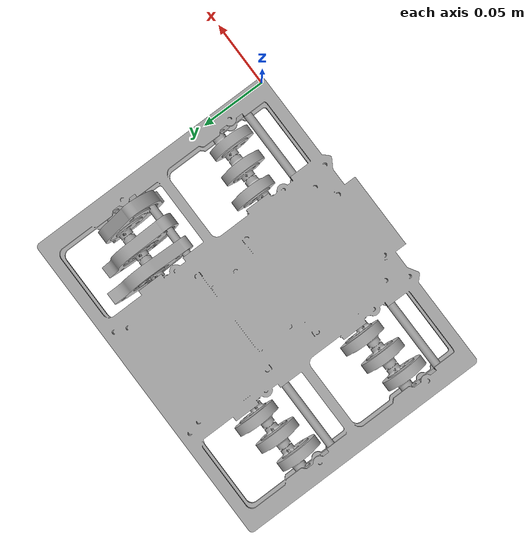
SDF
<?xml version="1.0" ?>
<sdf version="1.6">
  <world name="default">
    <audio>
      <device>0</device>
    </audio>

    <include>
      <uri>model://base</uri>
      <pose>0 0 0 0 0 0</pose>
    </include>

    <scene>
      <shadows>0</shadows>
      <grid>0</grid>
    </scene>

    <physics>
      <ode>
        <solver>
          <island_threads>5</island_threads>
          <thread_position_correction>1</thread_position_correction>
          <iters>5</iters>
        </solver>
      </ode>
    </physics>

  </world>
</sdf>

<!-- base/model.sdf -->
<sdf version="1.4">
<model name="base">
	<pose>0 0 0.1 0 0 0</pose>
	<static>false</static>
		<link name="link_base">
			<pose>0 0 0 0 0 0</pose>
			<self_collide>1</self_collide>
			<inertial>
				<pose>-0.120031 0.0898494 0.0255337 0 0 0</pose>
				<mass>0.305361</mass>
				<inertia>
					<ixx>0.001052</ixx>
					<ixy>-0.00000003171</ixy>
					<ixz>-0.000000321256</ixz>
					<iyy>0.001018</iyy>
					<iyz>-0.00003391</iyz>
					<izz>0.001780</izz>
				</inertia>
			</inertial>
			<collision name="collision">
				<geometry>
					<mesh>
						<uri>model://base/kame_assem_4.stl</uri>
					</mesh>
				</geometry>
			</collision>
			<visual name="visual">
				<geometry>
					<mesh>
						<uri>model://base/kame_assem_4_ad.stl</uri>
					</mesh>
				</geometry>
			</visual>
		</link>

		<link name="a_slider_jiku">
			<pose>-0.0727 0.1125 0.013 0 0 0</pose>
			<self_collide>1</self_collide>
			<inertial>
				<pose>-0.0325 0.000000000000000000648431 0.000000000000615133 0 0 0</pose>
				<mass>0.004623</mass>
				<inertia>
					<ixx>0.000000020124</ixx>
					<ixy>0</ixy>
					<ixz>0</ixz>
					<iyy>0.000001441072</iyy>
					<iyz>0</iyz>
					<izz>0.000001441072</izz>
				</inertia>
			</inertial>
			<collision name="collision">
				<geometry>
					<mesh>
						<uri>model://base/slider_jiku.stl</uri>
					</mesh>
				</geometry>
				<surface>
					<friction>
						<torsional>
							<coefficient>0</coefficient>
						</torsional>
						<ode>
							<mu>0</mu>
							<mu2>0</mu2>
							<slip1>1.0</slip1>
							<slip2>1.0</slip2>
						</ode>
					</friction>
				</surface>
			</collision>
			<visual name="visual">
				<geometry>
					<mesh>
						<uri>model://base/slider_jiku_ad.stl</uri>
					</mesh>
				</geometry>
			</visual>
		</link>

		<joint name="base_to_slider_a" type="revolute">
			<pose>0 0 0 0 0 0</pose>
			<child>a_slider_jiku</child>
			<parent>link_base</parent>
			<axis>
				<xyz>1 0 0</xyz>
				<use_parent_model_frame>1</use_parent_model_frame>
			</axis>
		</joint>

		<link name="d_slider_jiku">
			<pose>-0.0727 0.0225 0.013 0 0 0</pose>
			<self_collide>1</self_collide>
			<inertial>
				<pose>-0.0325 0.000000000000000000648431 0.000000000000615133 0 0 0</pose>
				<mass>0.004623</mass>
				<inertia>
					<ixx>0.000000020124</ixx>
					<ixy>0</ixy>
					<ixz>0</ixz>
					<iyy>0.000001441072</iyy>
					<iyz>0</iyz>
					<izz>0.000001441072</izz>
				</inertia>
			</inertial>
			<collision name="collision">
				<geometry>
					<mesh>
						<uri>model://base/slider_jiku.stl</uri>
					</mesh>
				</geometry>
				<surface>
					<friction>
						<torsional>
							<coefficient>0</coefficient>
						</torsional>
						<ode>
							<mu>0</mu>
							<mu2>0</mu2>
							<slip1>1.0</slip1>
							<slip2>1.0</slip2>
						</ode>
					</friction>
				</surface>
			</collision>
			<visual name="visual">
				<geometry>
					<mesh>
						<uri>model://base/slider_jiku_ad.stl</uri>
					</mesh>
				</geometry>
			</visual>
		</link>

		<joint name="base_to_slider_d" type="revolute">
			<pose>0 0 0 0 0 0</pose>
			<child>d_slider_jiku</child>
			<parent>link_base</parent>
			<axis>
				<xyz>1 0 0</xyz>
				<use_parent_model_frame>1</use_parent_model_frame>
			</axis>
		</joint>

		<link name="b_slider_jiku">
			<pose>-0.1673 0.1125 0.013 0 0 0</pose>
			<self_collide>1</self_collide>
			<inertial>
				<pose>-0.0325 0.000000000000000000648431 -0.000000000000615133 0 0 0</pose>
				<mass>0.004623</mass>
				<inertia>
					<ixx>0.000000020124</ixx>
					<ixy>0</ixy>
					<ixz>0</ixz>
					<iyy>0.000001441072</iyy>
					<iyz>0</iyz>
					<izz>0.000001441072</izz>
				</inertia>
			</inertial>
			<collision name="collision">
				<geometry>
					<mesh>
						<uri>model://base/slider_jiku_2.stl</uri>
					</mesh>
				</geometry>
				<surface>
					<friction>
						<torsional>
							<coefficient>0</coefficient>
						</torsional>
						<ode>
							<mu>0</mu>
							<mu2>0</mu2>
							<slip1>1.0</slip1>
							<slip2>1.0</slip2>
						</ode>
					</friction>
				</surface>
			</collision>
			<visual name="visual">
				<geometry>
					<mesh>
						<uri>model://base/slider_jiku_2_ad.stl</uri>
					</mesh>
				</geometry>
			</visual>
		</link>

		<joint name="base_to_slider_b" type="revolute">
			<pose>0 0 0 0 0 0</pose>
			<child>b_slider_jiku</child>
			<parent>link_base</parent>
			<axis>
				<xyz>1 0 0</xyz>
				<use_parent_model_frame>1</use_parent_model_frame>
			</axis>
		</joint>

		<link name="c_slider_jiku">
			<pose>-0.1673 0.0225 0.013 0 0 0</pose>
			<self_collide>1</self_collide>
			<inertial>
				<pose>-0.0325 0.000000000000000000648431 -0.000000000000615133 0 0 0</pose>
				<mass>0.004623</mass>
				<inertia>
					<ixx>0.000000020124</ixx>
					<ixy>0</ixy>
					<ixz>0</ixz>
					<iyy>0.000001441072</iyy>
					<iyz>0</iyz>
					<izz>0.000001441072</izz>
				</inertia>
			</inertial>
			<collision name="collision">
				<geometry>
					<mesh>
						<uri>model://base/slider_jiku_2.stl</uri>
					</mesh>
				</geometry>
				<surface>
					<friction>
						<torsional>
							<coefficient>0</coefficient>
						</torsional>
						<ode>
							<mu>0</mu>
							<mu2>0</mu2>
							<slip1>1.0</slip1>
							<slip2>1.0</slip2>
						</ode>
					</friction>
				</surface>
			</collision>
			<visual name="visual">
				<geometry>
					<mesh>
						<uri>model://base/slider_jiku_2_ad.stl</uri>
					</mesh>
				</geometry>
			</visual>
		</link>

		<joint name="base_to_slider_c" type="revolute">
			<pose>0 0 0 0 0 0</pose>
			<child>c_slider_jiku</child>
			<parent>link_base</parent>
			<axis>
				<xyz>1 0 0</xyz>
				<use_parent_model_frame>1</use_parent_model_frame>
			</axis>
		</joint>

		<link name="a_crank_link">
			<pose>-0.0777 0.1375 0.013 0 0 0</pose>
			<self_collide>1</self_collide>
			<inertial>
				<pose>0.0374352 -0.000548426 -0.00311027 0 0 0</pose>
				<mass>0.094516</mass>
				<inertia>
					<ixx>0.00001618</ixx>
					<ixy>0.000004583807</ixy>
					<ixz>0.000000791555</ixz>
					<iyy>0.00002918</iyy>
					<iyz>-0.000000161333</iyz>
					<izz>0.00003007</izz>
				</inertia>
			</inertial>
			<collision name="collision">
				<geometry>
					<mesh>
						<uri>model://base/crank1.stl</uri>
					</mesh>
				</geometry>
			</collision>
			<visual name="visual">
				<geometry>
					<mesh>
						<uri>model://base/crank1_ad.stl</uri>
					</mesh>
				</geometry>
			</visual>
		</link>

		<joint name="base_to_a" type="revolute">
			<pose>0 0 0 0 0 0</pose>
			<child>a_crank_link</child>
			<parent>link_base</parent>
			<axis>
				<xyz>1 0 0</xyz>
				<use_parent_model_frame>1</use_parent_model_frame>
			</axis>
		</joint>

		<link name="b_crank_link">
			<pose>-0.1623 0.1375 0.013 0 0 0</pose>
			<self_collide>1</self_collide>
			<inertial>
				<pose>0.0374352 0.00000000035296 -0.00315826 0 0 0</pose>
				<mass>0.094516</mass>
				<inertia>
					<ixx>0.00001618</ixx>
					<ixy>-0.00000465162</ixy>
					<ixz>0.000000016441</ixz>
					<iyy>0.00002915</iyy>
					<iyz>0.0000000000001060</iyz>
					<izz>0.00003010</izz>
				</inertia>
			</inertial>
			<collision name="collision">
				<geometry>
					<mesh>
						<uri>model://base/crank2.stl</uri>
					</mesh>
				</geometry>
			</collision>
			<visual name="visual">
				<geometry>
					<mesh>
						<uri>model://base/crank2_ad.stl</uri>
					</mesh>
				</geometry>
			</visual>
		</link>

		<joint name="base_to_b" type="revolute">
			<pose>0 0 0 0 0 0</pose>
			<child>b_crank_link</child>
			<parent>link_base</parent>
			<axis>
				<xyz>1 0 0</xyz>
				<use_parent_model_frame>1</use_parent_model_frame>
			</axis>
		</joint>

		<link name="c_crank_link">
			<pose>-0.1623 0.0475 0.013 0 0 0</pose>
			<self_collide>1</self_collide>
			<inertial>
				<pose>0.0374352 0.00000000035296 -0.00315826 0 0 0</pose>
				<mass>0.094516</mass>
				<inertia>
					<ixx>0.00001618</ixx>
					<ixy>-0.00000465162</ixy>
					<ixz>0.000000016441</ixz>
					<iyy>0.00002915</iyy>
					<iyz>0.0000000000001060</iyz>
					<izz>0.00003010</izz>
				</inertia>
			</inertial>
			<collision name="collision">
				<geometry>
					<mesh>
						<uri>model://base/crank2.stl</uri>
					</mesh>
				</geometry>
			</collision>
			<visual name="visual">
				<geometry>
					<mesh>
						<uri>model://base/crank2_ad.stl</uri>
					</mesh>
				</geometry>
			</visual>
		</link>

		<joint name="base_to_c" type="revolute">
			<pose>0 0 0 0 0 0</pose>
			<child>c_crank_link</child>
			<parent>link_base</parent>
			<axis>
				<xyz>1 0 0</xyz>
				<use_parent_model_frame>1</use_parent_model_frame>
			</axis>
		</joint>

		<link name="d_crank_link">
			<pose>-0.0777 0.0475 0.013 0 0 0</pose>
			<self_collide>1</self_collide>
			<inertial>
				<pose>0.0374352 -0.000548426 -0.00311027 0 0 0</pose>
				<mass>0.094516</mass>
				<inertia>
					<ixx>0.00001618</ixx>
					<ixy>0.000004583807</ixy>
					<ixz>0.000000791555</ixz>
					<iyy>0.00002918</iyy>
					<iyz>-0.000000161333</iyz>
					<izz>0.00003007</izz>
				</inertia>
			</inertial>
			<collision name="collision">
				<geometry>
					<mesh>
						<uri>model://base/crank1.stl</uri>
					</mesh>
				</geometry>
			</collision>
			<visual name="visual">
				<geometry>
					<mesh>
						<uri>model://base/crank1_ad.stl</uri>
					</mesh>
				</geometry>
			</visual>
		</link>

		<joint name="base_to_d" type="revolute">
			<pose>0 0 0 0 0 0</pose>
			<child>d_crank_link</child>
			<parent>link_base</parent>
			<axis>
				<xyz>1 0 0</xyz>
				<use_parent_model_frame>1</use_parent_model_frame>
			</axis>
		</joint>

		<link name="asi_a_1">
			<pose>-0.0627 0.141830127 0.0105 0.78 0 0</pose>
			<self_collide>1</self_collide>
			<inertial>
				<pose>0.0044845 -0.00563879 -0.00377687 0 0 0</pose>
				<mass>0.010706</mass>
				<inertia>
					<ixx>0.000005401807</ixx>
					<ixy>0.000000000185</ixy>
					<ixz>0.000000000496</ixz>
					<iyy>0.000003139093</iyy>
					<iyz>-0.00000098431</iyz>
					<izz>0.000002411247</izz>
				</inertia>
			</inertial>
			<collision name="collision">
				<geometry>
					<mesh>
						<uri>model://base/asi.stl</uri>
					</mesh>
				</geometry>
			</collision>
			<visual name="visual">
				<geometry>
					<mesh>
						<uri>model://base/asi_ad.stl</uri>
					</mesh>
				</geometry>
			</visual>
		</link>

		<joint name="a_to_asi_1" type="revolute">
			<pose>0 0 0 0 0 0</pose>
			<child>asi_a_1</child>
			<parent>a_crank_link</parent>
			<axis>
				<xyz>1 0 0</xyz>
				<use_parent_model_frame>1</use_parent_model_frame>
			</axis>
		</joint>

		<link name="asi_a_2">
			<pose>-0.0447 0.1375 0.008 0.2199114858 0 0</pose>
			<self_collide>1</self_collide>
			<inertial>
				<pose>0.0044845 -0.00563879 -0.00377687 0 0 0</pose>
				<mass>0.010706</mass>
				<inertia>
					<ixx>0.000005401807</ixx>
					<ixy>0.000000000185</ixy>
					<ixz>0.000000000496</ixz>
					<iyy>0.000003139093</iyy>
					<iyz>-0.00000098431</iyz>
					<izz>0.000002411247</izz>
				</inertia>
			</inertial>
			<collision name="collision">
				<geometry>
					<mesh>
						<uri>model://base/asi.stl</uri>
					</mesh>
				</geometry>
			</collision>
			<visual name="visual">
				<geometry>
					<mesh>
						<uri>model://base/asi_ad.stl</uri>
					</mesh>
				</geometry>
			</visual>
		</link>

		<joint name="a_to_asi_2" type="revolute">
			<pose>0 0 0 0 0 0</pose>
			<child>asi_a_2</child>
			<parent>a_crank_link</parent>
			<axis>
				<xyz>1 0 0</xyz>
				<use_parent_model_frame>1</use_parent_model_frame>
			</axis>
		</joint>

		<link name="asi_a_3">
			<pose>-0.0257 0.13317 0.0105 -0.3909537524 0 0</pose>
			<self_collide>1</self_collide>
			<inertial>
				<pose>0.0044845 -0.00563879 -0.00377687 0 0 0</pose>
				<mass>0.010706</mass>
				<inertia>
					<ixx>0.000005401807</ixx>
					<ixy>0.000000000185</ixy>
					<ixz>0.000000000496</ixz>
					<iyy>0.000003139093</iyy>
					<iyz>-0.00000098431</iyz>
					<izz>0.000002411247</izz>
				</inertia>
			</inertial>
			<collision name="collision">
				<geometry>
					<mesh>
						<uri>model://base/asi.stl</uri>
					</mesh>
				</geometry>
			</collision>
			<visual name="visual">
				<geometry>
					<mesh>
						<uri>model://base/asi_ad.stl</uri>
					</mesh>
				</geometry>
			</visual>
		</link>

		<joint name="a_to_asi_3" type="revolute">
			<pose>0 0 0 0 0 0</pose>
			<child>asi_a_3</child>
			<parent>a_crank_link</parent>
			<axis>
				<xyz>1 0 0</xyz>
				<use_parent_model_frame>1</use_parent_model_frame>
			</axis>
		</joint>

	</model>
</sdf>
